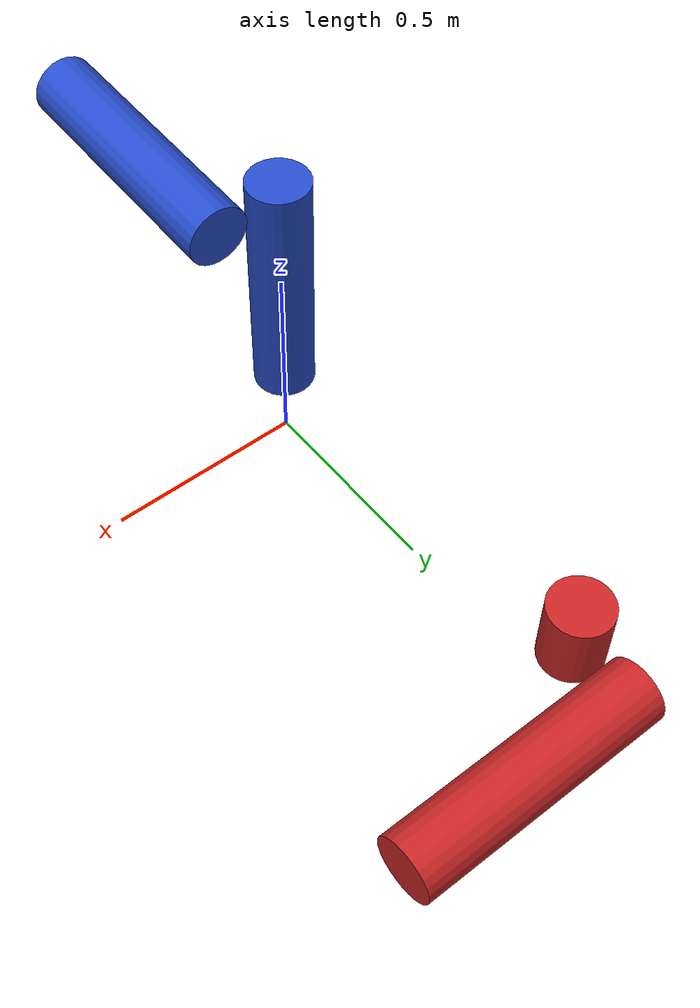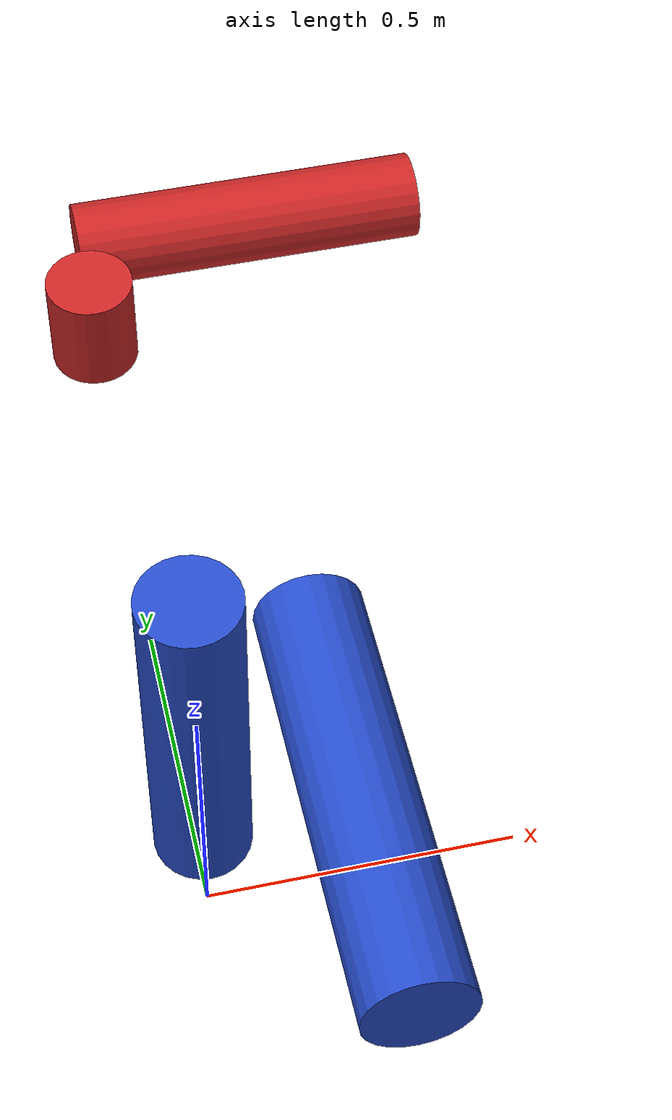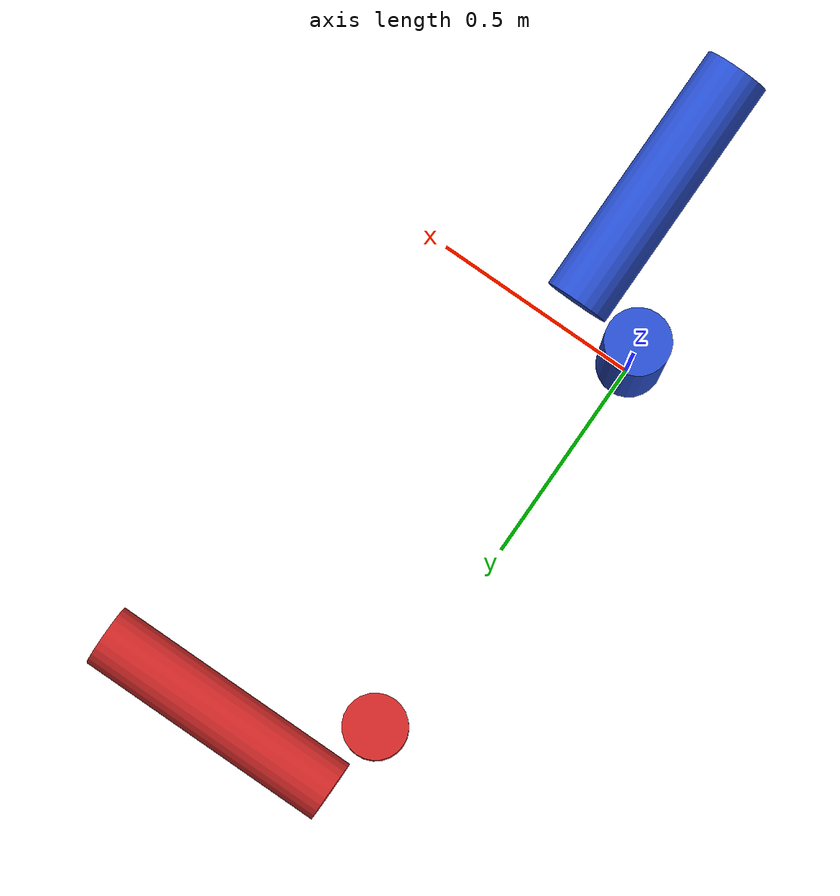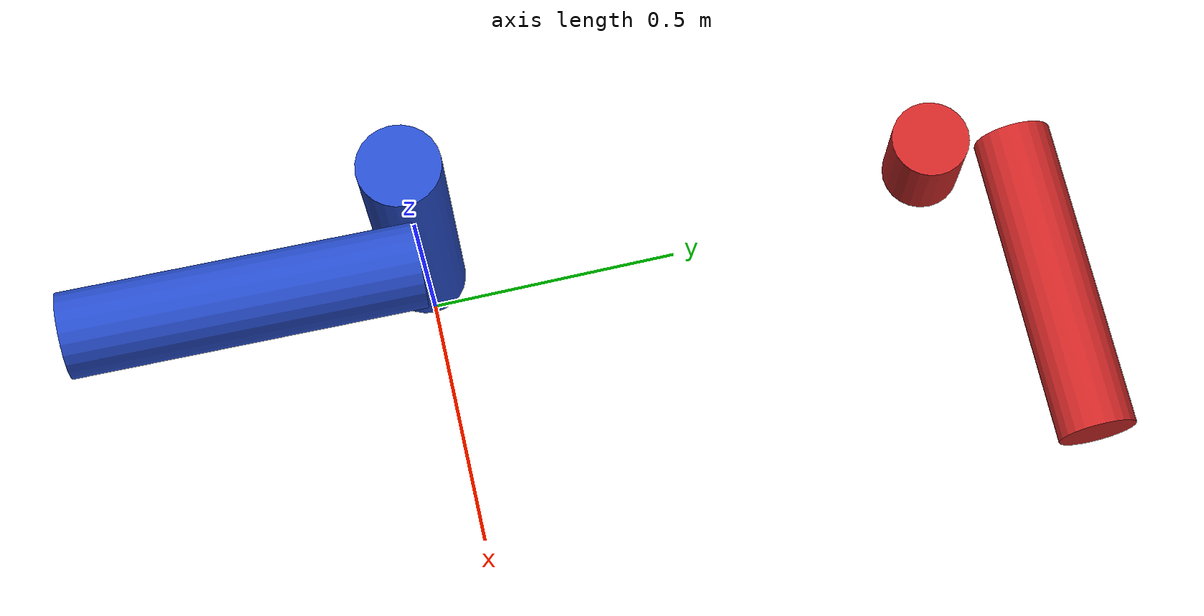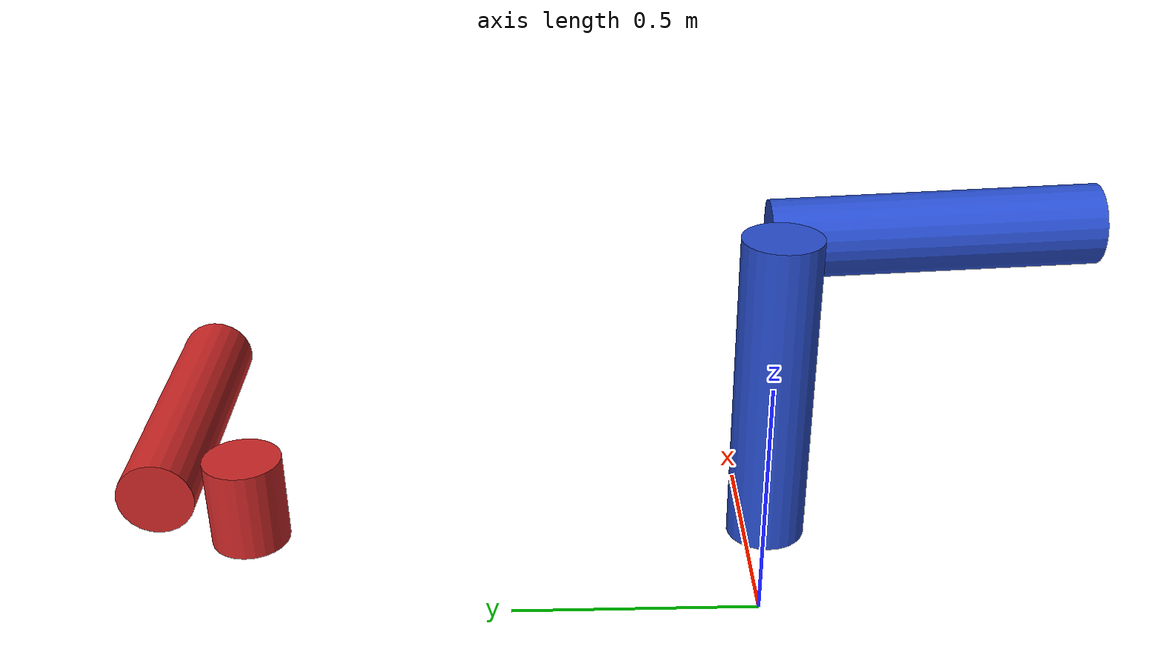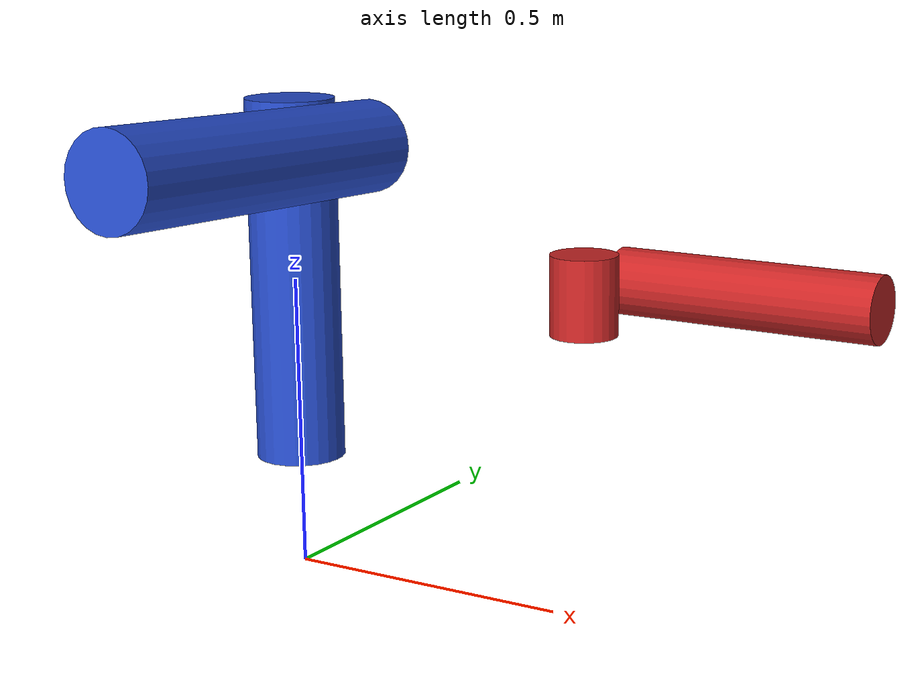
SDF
<?xml version="1.0"?>
<sdf version="1.6">
  <world name='default'>
    <light name='sun' type='directional'>
      <cast_shadows>1</cast_shadows>
      <pose frame=''>0 0 10 0 -0 0</pose>
      <diffuse>0.8 0.8 0.8 1</diffuse>
      <specular>0.1 0.1 0.1 1</specular>
      <attenuation>
        <range>1000</range>
        <constant>0.9</constant>
        <linear>0.01</linear>
        <quadratic>0.001</quadratic>
      </attenuation>
      <direction>-0.5 0.5 -1</direction>
    </light>
    <gravity>0 0 -90.81</gravity>
    <magnetic_field>6e-06 2.3e-05 -4.2e-05</magnetic_field>
    <atmosphere type='adiabatic'/>
    <physics type="ode">
      <ode>
        <solver>
          <type>quick</type>
          <iters>100</iters>
          <precon_iters>0</precon_iters>
          <sor>1.000000</sor>
        </solver>
        <constraints>
          <cfm>0.000000</cfm>
          <erp>0.200000</erp>
          <contact_max_correcting_vel>0.000000</contact_max_correcting_vel>
          <contact_surface_layer>0.00000</contact_surface_layer>
        </constraints>
      </ode>
      <real_time_update_rate>1000.0</real_time_update_rate>
      <max_step_size>0.001000</max_step_size>
    </physics>
    <scene>
      <ambient>0.4 0.4 0.4 1</ambient>
      <background>0.7 0.7 0.7 1</background>
      <shadows>1</shadows>
    </scene>

    <model name='joint_velocity_demo'>
      <plugin name='set_joint_velocity_plugin' filename='libSetJointVelocityPlugin.so'/>
      <link name='blue_link_0'>
        <pose frame=''>0 0 0.5 0 0 0</pose>
        <visual name='blue_visual_0'>
          <geometry>
            <cylinder>
              <radius>0.075</radius>
              <length>0.6127</length>
            </cylinder>
          </geometry>
          <material>
            <lighting>1</lighting>
            <script>
              <uri>file://media/materials/scripts/gazebo.material</uri>
              <name>Gazebo/Blue</name>
            </script>
          </material>
        </visual>
        <inertial>
          <mass>12.93</mass>
          <inertia>
            <ixx>0.422678</ixx>
            <ixy>0</ixy>
            <ixz>0</ixz>
            <iyy>0.422678</iyy>
            <iyz>0</iyz>
            <izz>0.0363656</izz>
          </inertia>
        </inertial>
        <gravity>1</gravity>
        <velocity_decay/>
        <self_collide>1</self_collide>
      </link>
      <link name='blue_link_1'>
        <pose frame=''>0.16 -0.306 0.75 1.53 0 0</pose>
        <visual name='blue_visual_1'>
          <geometry>
            <cylinder>
              <radius>0.075</radius>
              <length>0.6127</length>
            </cylinder>
          </geometry>
          <material>
            <lighting>1</lighting>
            <script>
              <uri>file://media/materials/scripts/gazebo.material</uri>
              <name>Gazebo/Blue</name>
            </script>
          </material>
        </visual>
        <inertial>
          <pose frame=''>0 0 0 0 0 0</pose>
          <mass>12.93</mass>
          <inertia>
            <ixx>0.422678</ixx>
            <ixy>0</ixy>
            <ixz>0</ixz>
            <iyy>0.422678</iyy>
            <iyz>0</iyz>
            <izz>0.0363656</izz>
          </inertia>
        </inertial>
        <gravity>1</gravity>
        <velocity_decay/>
        <self_collide>1</self_collide>
      </link>
      <joint name='blue_joint' type='revolute'>
        <parent>blue_link_0</parent>
        <child>blue_link_1</child>
        <axis>
          <xyz>1 0 0</xyz>
          <limit>
            <lower>-6.0</lower>
            <upper>6.0</upper>
            <effort>-1</effort>
            <velocity>-1</velocity>
          </limit>
          <dynamics>
            <damping>0</damping>
            <friction>0</friction>
            <spring_reference>0</spring_reference>
            <spring_stiffness>0</spring_stiffness>
          </dynamics>
          <use_parent_model_frame>1</use_parent_model_frame>
        </axis>
      </joint>

      <joint name='world_joint' type='revolute'>
        <parent>world</parent>
        <child>blue_link_0</child>
        <pose frame=''>0 0 -0.25 0 -0 0</pose>
        <axis>
          <xyz>0 0 1</xyz>
          <limit>
            <lower>-3.14</lower>
            <upper>3.14</upper>
            <effort>-1</effort>
            <velocity>-1</velocity>
          </limit>
          <dynamics>
            <damping>0</damping>
            <friction>0</friction>
            <spring_reference>0</spring_reference>
            <spring_stiffness>0</spring_stiffness>
          </dynamics>
          <use_parent_model_frame>1</use_parent_model_frame>
        </axis>
      </joint>

    <link name='ra_shoulder_link'>
        <pose frame=''>0 1.0 0.2807 0 -0 -3.14159</pose>
        <visual name='shoulder_visual'>
          <geometry>
            <cylinder>
              <radius>0.075</radius>
              <length>0.178</length>
            </cylinder>
          </geometry>
          <material>
            <lighting>1</lighting>
            <script>
              <uri>file://media/materials/scripts/gazebo.material</uri>
              <name>Gazebo/Red</name>
            </script>
          </material>
        </visual>
        <inertial>
          <pose frame=''>0 0 0 0 -0 0</pose>
          <mass>7.778</mass>
          <inertia>
            <ixx>0.0314743</ixx>
            <ixy>0</ixy>
            <ixz>0</ixz>
            <iyy>0.0314743</iyy>
            <iyz>0</iyz>
            <izz>0.0218756</izz>
          </inertia>
        </inertial>
        <gravity>1</gravity>
        <velocity_decay/>
        <self_collide>1</self_collide>
      </link>
      <joint name='ra_shoulder_pan_joint' type='revolute'>
        <child>ra_shoulder_link</child>
        <parent>world</parent>
        <axis>
          <xyz>0 0 1</xyz>
          <limit>
            <lower>-6.28319</lower>
            <upper>6.28319</upper>
            <effort>-1</effort>
            <velocity>3.14</velocity>
          </limit>
          <dynamics>
            <damping>0</damping>
            <friction>0</friction>
            <spring_reference>0</spring_reference>
            <spring_stiffness>0</spring_stiffness>
          </dynamics>
          <use_parent_model_frame>1</use_parent_model_frame>
        </axis>
      </joint>

      <link name='ra_upper_arm_link'>
        <pose frame=''>0 1.0 0.2807 1.5708 -0 -3.14159</pose>
        <visual name='upper_arm_visual'>
          <pose frame=''>-0.30635 0 0.175 3.14159 1.57079 3.14159</pose>
          <geometry>
            <cylinder>
              <radius>0.075</radius>
              <length>0.6127</length>
            </cylinder>
          </geometry>
          <material>
            <lighting>1</lighting>
            <script>
              <uri>file://media/materials/scripts/gazebo.material</uri>
              <name>Gazebo/Red</name>
            </script>
          </material>
        </visual>
        <inertial>
          <pose frame=''>-0.30635 0 0.175 3.14159 1.57079 3.14159</pose>
          <mass>12.93</mass>
          <inertia>
            <ixx>0.422678</ixx>
            <ixy>0</ixy>
            <ixz>0</ixz>
            <iyy>0.422678</iyy>
            <iyz>0</iyz>
            <izz>0.0363656</izz>
          </inertia>
        </inertial>
        <gravity>1</gravity>
        <velocity_decay/>
        <self_collide>1</self_collide>
      </link>
      <joint name='ra_shoulder_lift_joint' type='revolute'>
        <child>ra_upper_arm_link</child>
        <parent>ra_shoulder_link</parent>
        <axis>
          <xyz>-0 1 -0</xyz>
          <limit>
            <lower>-6.28319</lower>
            <upper>6.28319</upper>
            <effort>-1</effort>
            <velocity>-1</velocity>
          </limit>
          <dynamics>
            <damping>0</damping>
            <friction>0</friction>
            <spring_reference>0</spring_reference>
            <spring_stiffness>0</spring_stiffness>
          </dynamics>
          <use_parent_model_frame>1</use_parent_model_frame>
        </axis>
      </joint>

      <static>0</static>
    </model>
    <gui fullscreen='0'>
      <camera name='user_camera'>
        <pose frame=''>-10 0 3 0 0 0</pose>
        <view_controller>orbit</view_controller>
        <projection_type>perspective</projection_type>
      </camera>
    </gui>
  </world>

</sdf>
